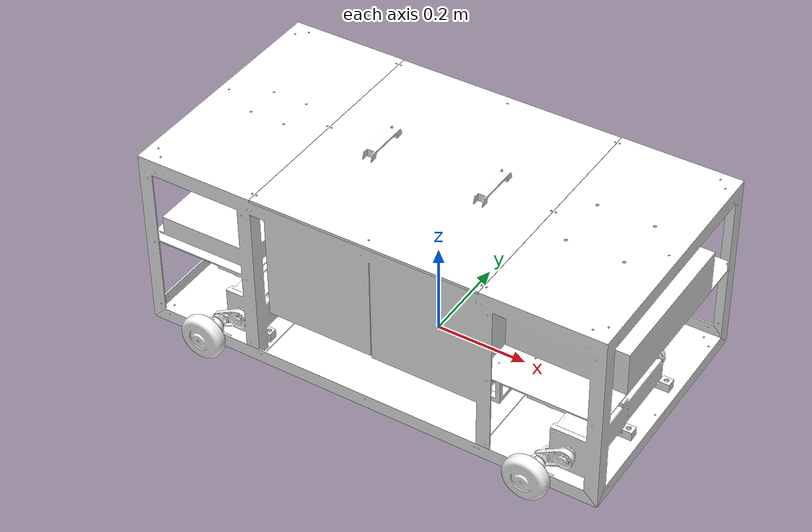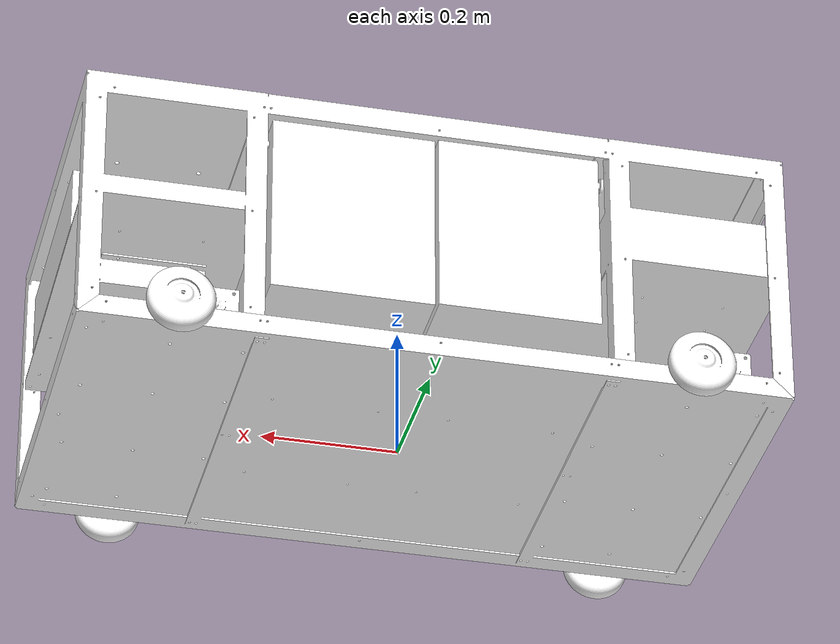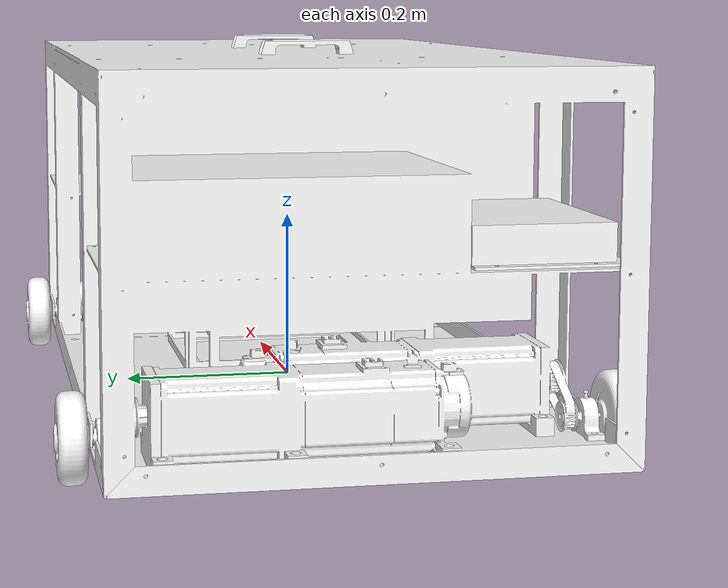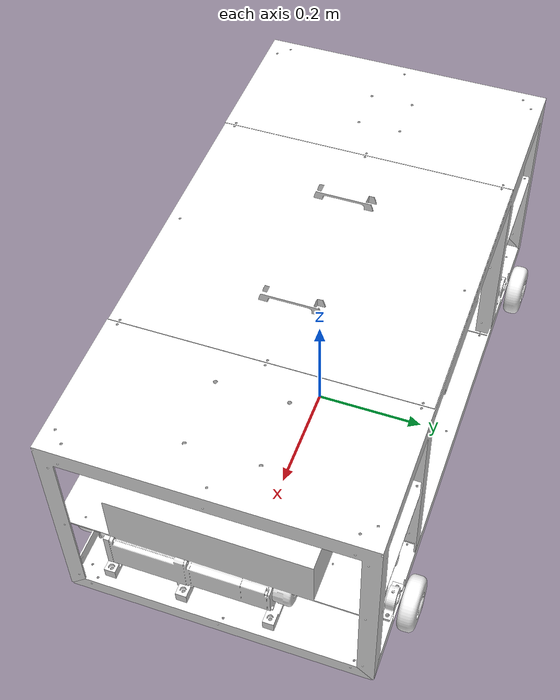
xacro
<?xml version="1.0"?>
<robot xmlns:xacro="http://wiki.ros.org/xacro"
       name="car6">

  <link
    name="body_link">
    <inertial>
      <origin
        xyz="4.02122942777527E-07 3.44169137633799E-15 0.00212528127877701"
        rpy="0 0 0" />
      <mass
        value="2.19507335899911" />
      <inertia
        ixx="0.0436806825633892"
        ixy="-5.08655266646313E-06"
        ixz="-3.34444135411209E-17"
        iyy="0.0455253476297357"
        iyz="-1.22445531747282E-16"
        izz="0.0891232981698546" />
    </inertial>
    <visual>
      <origin
        xyz="0 0 0"
        rpy="0 0 0" />
      <geometry>
        <mesh
          filename="package://car6/meshes/body_link.STL" />
      </geometry>
      <material
        name="">
        <color
          rgba="1 1 1 1" />
      </material>
    </visual>
    <collision>
      <origin
        xyz="0 0 0"
        rpy="0 0 0" />
      <geometry>
        <mesh
          filename="package://car6/meshes/body_link.STL" />
      </geometry>
    </collision>
  </link>
  <link
    name="link1">
    <inertial>
      <origin
        xyz="0 0.015 -2.77555756156289E-17"
        rpy="0 0 0" />
      <mass
        value="0.196670527636265" />
      <inertia
        ixx="0.00012319074315568"
        ixy="1.68055485182223E-21"
        ixz="5.68270902369089E-22"
        iyy="0.000221934036274288"
        iyz="-2.99013335426208E-20"
        izz="0.00012319074315568" />
    </inertial>
    <visual>
      <origin
        xyz="0 0 0"
        rpy="0 0 0" />
      <geometry>
        <mesh
          filename="package://car6/meshes/link1.STL" />
      </geometry>
      <material
        name="">
        <color
          rgba="1 1 1 1" />
      </material>
    </visual>
    <collision>
      <origin
        xyz="0 0 0"
        rpy="0 0 0" />
      <geometry>
        <mesh
          filename="package://car6/meshes/link1.STL" />
      </geometry>
    </collision>
  </link>
  <joint
    name="joint1"
    type="revolute">
    <origin
      xyz="-0.37 -0.2765 0.022"
      rpy="0 0 3.1416" />ff
    <parent
      link="body_link" />
    <child
      link="link1" />
    <axis
      xyz="0 -1 0" />
    <limit
      lower="-3.14"
      upper="3.14"
      effort="100"
      velocity="1" />
  </joint>

  <link
    name="link2">
    <inertial>
      <origin
        xyz="1.11022302462516E-16 0.00555555555555555 8.32667268468867E-17"
        rpy="0 0 0" />
      <mass
        value="0.196670527636265" />
      <inertia
        ixx="0.00012319074315568"
        ixy="-1.88078947842729E-20"
        ixz="2.0545131216551E-22"
        iyy="0.000221934036274288"
        iyz="-1.86019000446159E-20"
        izz="0.00012319074315568" />
    </inertial>
    <visual>
      <origin
        xyz="0 0 0"
        rpy="0 0 0" />
      <geometry>
        <mesh
          filename="package://car6/meshes/link2.STL" />
      </geometry>
      <material
        name="">
        <color
          rgba="1 1 1 1" />
      </material>
    </visual>
    <collision>
      <origin
        xyz="0 0 0"
        rpy="0 0 0" />
      <geometry>
        <mesh
          filename="package://car6/meshes/link2.STL" />
      </geometry>
    </collision>
  </link>
  <joint
    name="joint2"
    type="revolute">
    <origin
      xyz="0.37 -0.28594 0.022"
      rpy="0 0 -3.1416" />
    <parent
      link="body_link" />
    <child
      link="link2" />
    <axis
      xyz="0 -1 0" />
    <limit
      lower="-3.14"
      upper="3.14"
      effort="100"
      velocity="1" />
  </joint>

  <link
    name="link3">
    <inertial>
      <origin
        xyz="-1.11022302462516E-16 0.00555555555555559 5.55111512312578E-17"
        rpy="0 0 0" />
      <mass
        value="0.196670527636265" />
      <inertia
        ixx="0.00012319074315568"
        ixy="-8.41242213867249E-21"
        ixz="6.34199391620153E-22"
        iyy="0.000221934036274288"
        iyz="6.59046589990345E-20"
        izz="0.00012319074315568" />
    </inertial>
    <visual>
      <origin
        xyz="0 0 0"
        rpy="0 0 0" />
      <geometry>
        <mesh
          filename="package://car6/meshes/link3.STL" />
      </geometry>
      <material
        name="">
        <color
          rgba="1 1 1 1" />
      </material>
    </visual>
    <collision>
      <origin
        xyz="0 0 0"
        rpy="0 0 0" />
      <geometry>
        <mesh
          filename="package://car6/meshes/link3.STL" />
      </geometry>
    </collision>
  </link>
  <joint
    name="joint3"
    type="revolute">
    <origin
      xyz="0.37 0.28594 0.022"
      rpy="0 0 0" />
    <parent
      link="body_link" />
    <child
      link="link3" />
    <axis
      xyz="0 -1 0" />
    <limit
      lower="-3.14"
      upper="3.14"
      effort="100"
      velocity="1" />
  </joint>
  <link
    name="link4">
    <inertial>
      <origin
        xyz="1.38777878078145E-17 -0.00555555555555542 -2.77555756156289E-17"
        rpy="0 0 0" />
      <mass
        value="0.196670527636265" />
      <inertia
        ixx="0.00012319074315568"
        ixy="-2.41157420217329E-21"
        ixz="3.0147920638297E-22"
        iyy="0.000221934036274288"
        iyz="7.15576279845473E-20"
        izz="0.00012319074315568" />
    </inertial>
    <visual>
      <origin
        xyz="0 0 0"
        rpy="0 0 0" />
      <geometry>
        <mesh
          filename="package://car6/meshes/link4.STL" />
      </geometry>
      <material
        name="">
        <color
          rgba="1 1 1 1" />
      </material>
    </visual>
    <collision>
      <origin
        xyz="0 0 0"
        rpy="0 0 0" />
      <geometry>
        <mesh
          filename="package://car6/meshes/link4.STL" />
      </geometry>
    </collision>
  </link>
  <joint
    name="joint4"
    type="revolute">
    <origin
      xyz="-0.37 0.29706 0.022"
      rpy="0 0 0" />
    <parent
      link="body_link" />
    <child
      link="link4" />
    <axis
      xyz="0 -1 0" />
    <limit
      lower="-3.14"
      upper="3.14"
      effort="100"
      velocity="1" />
  </joint>

  <link
    name="fix_link">
    <inertial>
      <origin
        xyz="-0.00205175959116993 0.00354919045860191 0.230032668804987"
        rpy="0 0 0" />
      <mass
        value="96.1246042097922" />
      <inertia
        ixx="1.91388330168671"
        ixy="-2.38360107290611E-05"
        ixz="-2.0468759548067E-17"
        iyy="0.911239224486908"
        iyz="-5.55860947911324E-15"
        izz="1.93441225874395" />
    </inertial>
    <visual>
      <origin
        xyz="0 0 0"
        rpy="0 0 0" />
      <geometry>
        <mesh
          filename="package://car6/meshes/fix_link.STL" />
      </geometry>
      <material
        name="">
        <color
          rgba="1 1 1 1" />
      </material>
    </visual>
    <collision>
      <origin
        xyz="0 0 0"
        rpy="0 0 0" />
      <geometry>
        <mesh
          filename="package://car6/meshes/fix_link.STL" />
      </geometry>
    </collision>
  </link>
  <joint
    name="fix_joint"
    type="fixed">
    <origin
      xyz="0 0 0"
      rpy="0 0 0" />
    <parent
      link="body_link" />
    <child
      link="fix_link" />
    <axis
      xyz="0 0 0" />
  </joint>

  <gazebo>
     <plugin name="differential_drive_controller" filename="libgazebo_ros_diff_drive.so">
         <rosDebugLevel>Debug</rosDebugLevel>
         <publishWheelTF>true</publishWheelTF>
         <robotNamespace>/</robotNamespace>
         <publishTf>1</publishTf>
         <publishWheelJointState>true</publishWheelJointState>
         <alwaysOn>true</alwaysOn>
         <updateRate>100.0</updateRate>
         <legacyMode>true</legacyMode>
         <leftJoint>fix_joint</leftJoint>

         <wheelSeparation>2.19</wheelSeparation>
         <wheelDiameter>0.196</wheelDiameter>
         <broadcastTF>1</broadcastTF>
         <wheelTorque>30</wheelTorque>
         <wheelAcceleration>1.8</wheelAcceleration>
         <commandTopic>cmd_vel</commandTopic>
         <odometryFrame>odom</odometryFrame>
         <odometryTopic>odom</odometryTopic>
         <robotBaseFrame>body_link</robotBaseFrame>
     </plugin>
  </gazebo>

</robot>
